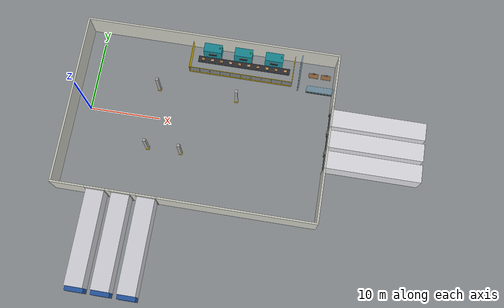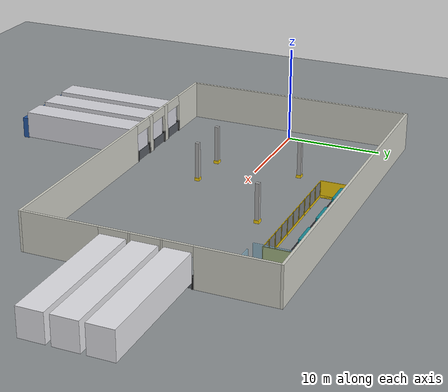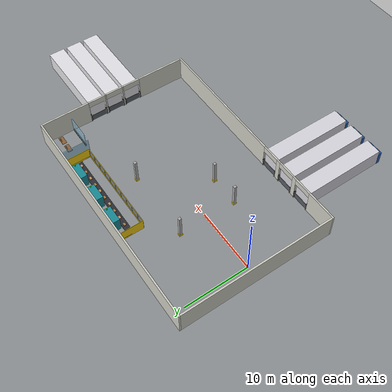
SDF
<sdf version="1.6">
 <world name="yektemak_factory">
  <model name="ground_plane">
   <static>true</static>
   <link name="link">
    <collision name="collision">
     <geometry><plane><normal>0 0 1</normal><size>120 120</size></plane></geometry>
     <surface><friction><ode><mu>1.0</mu><mu2>1.0</mu2></ode></friction></surface>
    </collision>
    <visual name="visual">
     <cast_shadows>false</cast_shadows>
     <geometry><plane><normal>0 0 1</normal><size>120 120</size></plane></geometry>
     <material>
      <ambient>0.44 0.46 0.46 1</ambient>
      <diffuse>0.55 0.57 0.58 1</diffuse>
      <specular>0.1 0.1 0.1 1</specular>
     </material>
    </visual>
   </link>
  </model>
  <model name="factory_building">
   <static>true</static>
   <link name="link">
    <collision name="b1_c">
     <pose>16 12.12 2 0 0 0</pose>
     <geometry><box><size>36.5 0.25 4</size></box></geometry>
    </collision>
    <visual name="b1_v">
     <pose>16 12.12 2 0 0 0</pose>
     <geometry><box><size>36.5 0.25 4</size></box></geometry>
     <material>
      <ambient>0.66 0.66 0.62 1</ambient>
      <diffuse>0.82 0.82 0.78 1</diffuse>
      <specular>0.1 0.1 0.1 1</specular>
     </material>
    </visual>
    <collision name="b2_c">
     <pose>-2.125 0 2 0 0 0</pose>
     <geometry><box><size>0.25 24 4</size></box></geometry>
    </collision>
    <visual name="b2_v">
     <pose>-2.125 0 2 0 0 0</pose>
     <geometry><box><size>0.25 24 4</size></box></geometry>
     <material>
      <ambient>0.66 0.66 0.62 1</ambient>
      <diffuse>0.82 0.82 0.78 1</diffuse>
      <specular>0.1 0.1 0.1 1</specular>
     </material>
    </visual>
    <collision name="b3_c">
     <pose>0.175 -12.12 2 0 0 0</pose>
     <geometry><box><size>4.85 0.25 4</size></box></geometry>
    </collision>
    <visual name="b3_v">
     <pose>0.175 -12.12 2 0 0 0</pose>
     <geometry><box><size>4.85 0.25 4</size></box></geometry>
     <material>
      <ambient>0.66 0.66 0.62 1</ambient>
      <diffuse>0.82 0.82 0.78 1</diffuse>
      <specular>0.1 0.1 0.1 1</specular>
     </material>
    </visual>
    <collision name="b4_c">
     <pose>5.75 -12.12 2 0 0 0</pose>
     <geometry><box><size>0.7 0.25 4</size></box></geometry>
    </collision>
    <visual name="b4_v">
     <pose>5.75 -12.12 2 0 0 0</pose>
     <geometry><box><size>0.7 0.25 4</size></box></geometry>
     <material>
      <ambient>0.66 0.66 0.62 1</ambient>
      <diffuse>0.82 0.82 0.78 1</diffuse>
      <specular>0.1 0.1 0.1 1</specular>
     </material>
    </visual>
    <collision name="b5_c">
     <pose>9.25 -12.12 2 0 0 0</pose>
     <geometry><box><size>0.7 0.25 4</size></box></geometry>
    </collision>
    <visual name="b5_v">
     <pose>9.25 -12.12 2 0 0 0</pose>
     <geometry><box><size>0.7 0.25 4</size></box></geometry>
     <material>
      <ambient>0.66 0.66 0.62 1</ambient>
      <diffuse>0.82 0.82 0.78 1</diffuse>
      <specular>0.1 0.1 0.1 1</specular>
     </material>
    </visual>
    <collision name="b6_c">
     <pose>23.32 -12.12 2 0 0 0</pose>
     <geometry><box><size>21.85 0.25 4</size></box></geometry>
    </collision>
    <visual name="b6_v">
     <pose>23.32 -12.12 2 0 0 0</pose>
     <geometry><box><size>21.85 0.25 4</size></box></geometry>
     <material>
      <ambient>0.66 0.66 0.62 1</ambient>
      <diffuse>0.82 0.82 0.78 1</diffuse>
      <specular>0.1 0.1 0.1 1</specular>
     </material>
    </visual>
    <collision name="b7_c">
     <pose>4 -12.12 3.5 0 0 0</pose>
     <geometry><box><size>2.8 0.25 1</size></box></geometry>
    </collision>
    <visual name="b7_v">
     <pose>4 -12.12 3.5 0 0 0</pose>
     <geometry><box><size>2.8 0.25 1</size></box></geometry>
     <material>
      <ambient>0.66 0.66 0.62 1</ambient>
      <diffuse>0.82 0.82 0.78 1</diffuse>
      <specular>0.1 0.1 0.1 1</specular>
     </material>
    </visual>
    <collision name="b8_c">
     <pose>4 -12.12 0.5 0 0 0</pose>
     <geometry><box><size>2.8 0.05 1</size></box></geometry>
    </collision>
    <visual name="b8_v">
     <pose>4 -12.12 0.5 0 0 0</pose>
     <geometry><box><size>2.8 0.05 1</size></box></geometry>
     <material>
      <ambient>0.28 0.30 0.32 1</ambient>
      <diffuse>0.35 0.37 0.4 1</diffuse>
      <specular>0.1 0.1 0.1 1</specular>
     </material>
    </visual>
    <collision name="b9_c">
     <pose>2.7 -12.12 0.6 0 0 0</pose>
     <geometry><box><size>0.18 0.35 1.2</size></box></geometry>
    </collision>
    <visual name="b9_v">
     <pose>2.7 -12.12 0.6 0 0 0</pose>
     <geometry><box><size>0.18 0.35 1.2</size></box></geometry>
     <material>
      <ambient>0.06 0.06 0.06 1</ambient>
      <diffuse>0.08 0.08 0.08 1</diffuse>
      <specular>0.1 0.1 0.1 1</specular>
     </material>
    </visual>
    <collision name="b10_c">
     <pose>5.3 -12.12 0.6 0 0 0</pose>
     <geometry><box><size>0.18 0.35 1.2</size></box></geometry>
    </collision>
    <visual name="b10_v">
     <pose>5.3 -12.12 0.6 0 0 0</pose>
     <geometry><box><size>0.18 0.35 1.2</size></box></geometry>
     <material>
      <ambient>0.06 0.06 0.06 1</ambient>
      <diffuse>0.08 0.08 0.08 1</diffuse>
      <specular>0.1 0.1 0.1 1</specular>
     </material>
    </visual>
    <collision name="b11_c">
     <pose>7.5 -12.12 3.5 0 0 0</pose>
     <geometry><box><size>2.8 0.25 1</size></box></geometry>
    </collision>
    <visual name="b11_v">
     <pose>7.5 -12.12 3.5 0 0 0</pose>
     <geometry><box><size>2.8 0.25 1</size></box></geometry>
     <material>
      <ambient>0.66 0.66 0.62 1</ambient>
      <diffuse>0.82 0.82 0.78 1</diffuse>
      <specular>0.1 0.1 0.1 1</specular>
     </material>
    </visual>
    <collision name="b12_c">
     <pose>7.5 -12.12 0.5 0 0 0</pose>
     <geometry><box><size>2.8 0.05 1</size></box></geometry>
    </collision>
    <visual name="b12_v">
     <pose>7.5 -12.12 0.5 0 0 0</pose>
     <geometry><box><size>2.8 0.05 1</size></box></geometry>
     <material>
      <ambient>0.28 0.30 0.32 1</ambient>
      <diffuse>0.35 0.37 0.4 1</diffuse>
      <specular>0.1 0.1 0.1 1</specular>
     </material>
    </visual>
    <collision name="b13_c">
     <pose>6.2 -12.12 0.6 0 0 0</pose>
     <geometry><box><size>0.18 0.35 1.2</size></box></geometry>
    </collision>
    <visual name="b13_v">
     <pose>6.2 -12.12 0.6 0 0 0</pose>
     <geometry><box><size>0.18 0.35 1.2</size></box></geometry>
     <material>
      <ambient>0.06 0.06 0.06 1</ambient>
      <diffuse>0.08 0.08 0.08 1</diffuse>
      <specular>0.1 0.1 0.1 1</specular>
     </material>
    </visual>
    <collision name="b14_c">
     <pose>8.8 -12.12 0.6 0 0 0</pose>
     <geometry><box><size>0.18 0.35 1.2</size></box></geometry>
    </collision>
    <visual name="b14_v">
     <pose>8.8 -12.12 0.6 0 0 0</pose>
     <geometry><box><size>0.18 0.35 1.2</size></box></geometry>
     <material>
      <ambient>0.06 0.06 0.06 1</ambient>
      <diffuse>0.08 0.08 0.08 1</diffuse>
      <specular>0.1 0.1 0.1 1</specular>
     </material>
    </visual>
    <collision name="b15_c">
     <pose>11 -12.12 3.5 0 0 0</pose>
     <geometry><box><size>2.8 0.25 1</size></box></geometry>
    </collision>
    <visual name="b15_v">
     <pose>11 -12.12 3.5 0 0 0</pose>
     <geometry><box><size>2.8 0.25 1</size></box></geometry>
     <material>
      <ambient>0.66 0.66 0.62 1</ambient>
      <diffuse>0.82 0.82 0.78 1</diffuse>
      <specular>0.1 0.1 0.1 1</specular>
     </material>
    </visual>
    <collision name="b16_c">
     <pose>11 -12.12 0.5 0 0 0</pose>
     <geometry><box><size>2.8 0.05 1</size></box></geometry>
    </collision>
    <visual name="b16_v">
     <pose>11 -12.12 0.5 0 0 0</pose>
     <geometry><box><size>2.8 0.05 1</size></box></geometry>
     <material>
      <ambient>0.28 0.30 0.32 1</ambient>
      <diffuse>0.35 0.37 0.4 1</diffuse>
      <specular>0.1 0.1 0.1 1</specular>
     </material>
    </visual>
    <collision name="b17_c">
     <pose>9.7 -12.12 0.6 0 0 0</pose>
     <geometry><box><size>0.18 0.35 1.2</size></box></geometry>
    </collision>
    <visual name="b17_v">
     <pose>9.7 -12.12 0.6 0 0 0</pose>
     <geometry><box><size>0.18 0.35 1.2</size></box></geometry>
     <material>
      <ambient>0.06 0.06 0.06 1</ambient>
      <diffuse>0.08 0.08 0.08 1</diffuse>
      <specular>0.1 0.1 0.1 1</specular>
     </material>
    </visual>
    <collision name="b18_c">
     <pose>12.3 -12.12 0.6 0 0 0</pose>
     <geometry><box><size>0.18 0.35 1.2</size></box></geometry>
    </collision>
    <visual name="b18_v">
     <pose>12.3 -12.12 0.6 0 0 0</pose>
     <geometry><box><size>0.18 0.35 1.2</size></box></geometry>
     <material>
      <ambient>0.06 0.06 0.06 1</ambient>
      <diffuse>0.08 0.08 0.08 1</diffuse>
      <specular>0.1 0.1 0.1 1</specular>
     </material>
    </visual>
    <collision name="b19_c">
     <pose>34.12 -8.2 2 0 0 0</pose>
     <geometry><box><size>0.25 7.6 4</size></box></geometry>
    </collision>
    <visual name="b19_v">
     <pose>34.12 -8.2 2 0 0 0</pose>
     <geometry><box><size>0.25 7.6 4</size></box></geometry>
     <material>
      <ambient>0.66 0.66 0.62 1</ambient>
      <diffuse>0.82 0.82 0.78 1</diffuse>
      <specular>0.1 0.1 0.1 1</specular>
     </material>
    </visual>
    <collision name="b20_c">
     <pose>34.12 -1.5 2 0 0 0</pose>
     <geometry><box><size>0.25 0.2 4</size></box></geometry>
    </collision>
    <visual name="b20_v">
     <pose>34.12 -1.5 2 0 0 0</pose>
     <geometry><box><size>0.25 0.2 4</size></box></geometry>
     <material>
      <ambient>0.66 0.66 0.62 1</ambient>
      <diffuse>0.82 0.82 0.78 1</diffuse>
      <specular>0.1 0.1 0.1 1</specular>
     </material>
    </visual>
    <collision name="b21_c">
     <pose>34.12 1.5 2 0 0 0</pose>
     <geometry><box><size>0.25 0.2 4</size></box></geometry>
    </collision>
    <visual name="b21_v">
     <pose>34.12 1.5 2 0 0 0</pose>
     <geometry><box><size>0.25 0.2 4</size></box></geometry>
     <material>
      <ambient>0.66 0.66 0.62 1</ambient>
      <diffuse>0.82 0.82 0.78 1</diffuse>
      <specular>0.1 0.1 0.1 1</specular>
     </material>
    </visual>
    <collision name="b22_c">
     <pose>34.12 8.2 2 0 0 0</pose>
     <geometry><box><size>0.25 7.6 4</size></box></geometry>
    </collision>
    <visual name="b22_v">
     <pose>34.12 8.2 2 0 0 0</pose>
     <geometry><box><size>0.25 7.6 4</size></box></geometry>
     <material>
      <ambient>0.66 0.66 0.62 1</ambient>
      <diffuse>0.82 0.82 0.78 1</diffuse>
      <specular>0.1 0.1 0.1 1</specular>
     </material>
    </visual>
    <collision name="b23_c">
     <pose>34.12 -3 3.5 0 0 0</pose>
     <geometry><box><size>0.25 2.8 1</size></box></geometry>
    </collision>
    <visual name="b23_v">
     <pose>34.12 -3 3.5 0 0 0</pose>
     <geometry><box><size>0.25 2.8 1</size></box></geometry>
     <material>
      <ambient>0.66 0.66 0.62 1</ambient>
      <diffuse>0.82 0.82 0.78 1</diffuse>
      <specular>0.1 0.1 0.1 1</specular>
     </material>
    </visual>
    <collision name="b24_c">
     <pose>34.12 -3 0.5 0 0 0</pose>
     <geometry><box><size>0.05 2.8 1</size></box></geometry>
    </collision>
    <visual name="b24_v">
     <pose>34.12 -3 0.5 0 0 0</pose>
     <geometry><box><size>0.05 2.8 1</size></box></geometry>
     <material>
      <ambient>0.28 0.30 0.32 1</ambient>
      <diffuse>0.35 0.37 0.4 1</diffuse>
      <specular>0.1 0.1 0.1 1</specular>
     </material>
    </visual>
    <collision name="b25_c">
     <pose>34.12 -4.3 0.6 0 0 0</pose>
     <geometry><box><size>0.35 0.18 1.2</size></box></geometry>
    </collision>
    <visual name="b25_v">
     <pose>34.12 -4.3 0.6 0 0 0</pose>
     <geometry><box><size>0.35 0.18 1.2</size></box></geometry>
     <material>
      <ambient>0.06 0.06 0.06 1</ambient>
      <diffuse>0.08 0.08 0.08 1</diffuse>
      <specular>0.1 0.1 0.1 1</specular>
     </material>
    </visual>
    <collision name="b26_c">
     <pose>34.12 -1.7 0.6 0 0 0</pose>
     <geometry><box><size>0.35 0.18 1.2</size></box></geometry>
    </collision>
    <visual name="b26_v">
     <pose>34.12 -1.7 0.6 0 0 0</pose>
     <geometry><box><size>0.35 0.18 1.2</size></box></geometry>
     <material>
      <ambient>0.06 0.06 0.06 1</ambient>
      <diffuse>0.08 0.08 0.08 1</diffuse>
      <specular>0.1 0.1 0.1 1</specular>
     </material>
    </visual>
    <collision name="b27_c">
     <pose>34.12 0 3.5 0 0 0</pose>
     <geometry><box><size>0.25 2.8 1</size></box></geometry>
    </collision>
    <visual name="b27_v">
     <pose>34.12 0 3.5 0 0 0</pose>
     <geometry><box><size>0.25 2.8 1</size></box></geometry>
     <material>
      <ambient>0.66 0.66 0.62 1</ambient>
      <diffuse>0.82 0.82 0.78 1</diffuse>
      <specular>0.1 0.1 0.1 1</specular>
     </material>
    </visual>
    <collision name="b28_c">
     <pose>34.12 0 0.5 0 0 0</pose>
     <geometry><box><size>0.05 2.8 1</size></box></geometry>
    </collision>
    <visual name="b28_v">
     <pose>34.12 0 0.5 0 0 0</pose>
     <geometry><box><size>0.05 2.8 1</size></box></geometry>
     <material>
      <ambient>0.28 0.30 0.32 1</ambient>
      <diffuse>0.35 0.37 0.4 1</diffuse>
      <specular>0.1 0.1 0.1 1</specular>
     </material>
    </visual>
    <collision name="b29_c">
     <pose>34.12 -1.3 0.6 0 0 0</pose>
     <geometry><box><size>0.35 0.18 1.2</size></box></geometry>
    </collision>
    <visual name="b29_v">
     <pose>34.12 -1.3 0.6 0 0 0</pose>
     <geometry><box><size>0.35 0.18 1.2</size></box></geometry>
     <material>
      <ambient>0.06 0.06 0.06 1</ambient>
      <diffuse>0.08 0.08 0.08 1</diffuse>
      <specular>0.1 0.1 0.1 1</specular>
     </material>
    </visual>
    <collision name="b30_c">
     <pose>34.12 1.3 0.6 0 0 0</pose>
     <geometry><box><size>0.35 0.18 1.2</size></box></geometry>
    </collision>
    <visual name="b30_v">
     <pose>34.12 1.3 0.6 0 0 0</pose>
     <geometry><box><size>0.35 0.18 1.2</size></box></geometry>
     <material>
      <ambient>0.06 0.06 0.06 1</ambient>
      <diffuse>0.08 0.08 0.08 1</diffuse>
      <specular>0.1 0.1 0.1 1</specular>
     </material>
    </visual>
    <collision name="b31_c">
     <pose>34.12 3 3.5 0 0 0</pose>
     <geometry><box><size>0.25 2.8 1</size></box></geometry>
    </collision>
    <visual name="b31_v">
     <pose>34.12 3 3.5 0 0 0</pose>
     <geometry><box><size>0.25 2.8 1</size></box></geometry>
     <material>
      <ambient>0.66 0.66 0.62 1</ambient>
      <diffuse>0.82 0.82 0.78 1</diffuse>
      <specular>0.1 0.1 0.1 1</specular>
     </material>
    </visual>
    <collision name="b32_c">
     <pose>34.12 3 0.5 0 0 0</pose>
     <geometry><box><size>0.05 2.8 1</size></box></geometry>
    </collision>
    <visual name="b32_v">
     <pose>34.12 3 0.5 0 0 0</pose>
     <geometry><box><size>0.05 2.8 1</size></box></geometry>
     <material>
      <ambient>0.28 0.30 0.32 1</ambient>
      <diffuse>0.35 0.37 0.4 1</diffuse>
      <specular>0.1 0.1 0.1 1</specular>
     </material>
    </visual>
    <collision name="b33_c">
     <pose>34.12 1.7 0.6 0 0 0</pose>
     <geometry><box><size>0.35 0.18 1.2</size></box></geometry>
    </collision>
    <visual name="b33_v">
     <pose>34.12 1.7 0.6 0 0 0</pose>
     <geometry><box><size>0.35 0.18 1.2</size></box></geometry>
     <material>
      <ambient>0.06 0.06 0.06 1</ambient>
      <diffuse>0.08 0.08 0.08 1</diffuse>
      <specular>0.1 0.1 0.1 1</specular>
     </material>
    </visual>
    <collision name="b34_c">
     <pose>34.12 4.3 0.6 0 0 0</pose>
     <geometry><box><size>0.35 0.18 1.2</size></box></geometry>
    </collision>
    <visual name="b34_v">
     <pose>34.12 4.3 0.6 0 0 0</pose>
     <geometry><box><size>0.35 0.18 1.2</size></box></geometry>
     <material>
      <ambient>0.06 0.06 0.06 1</ambient>
      <diffuse>0.08 0.08 0.08 1</diffuse>
      <specular>0.1 0.1 0.1 1</specular>
     </material>
    </visual>
    <collision name="b35_c">
     <pose>9.25 4.5 2 0 0 0</pose>
     <geometry><box><size>0.4 0.4 4</size></box></geometry>
    </collision>
    <visual name="b35_v">
     <pose>9.25 4.5 2 0 0 0</pose>
     <geometry><box><size>0.4 0.4 4</size></box></geometry>
     <material>
      <ambient>0.54 0.54 0.54 1</ambient>
      <diffuse>0.68 0.68 0.68 1</diffuse>
      <specular>0.1 0.1 0.1 1</specular>
     </material>
    </visual>
    <collision name="b36_c">
     <pose>9.25 4.5 0.15 0 0 0</pose>
     <geometry><box><size>0.52 0.52 0.3</size></box></geometry>
    </collision>
    <visual name="b36_v">
     <pose>9.25 4.5 0.15 0 0 0</pose>
     <geometry><box><size>0.52 0.52 0.3</size></box></geometry>
     <material>
      <ambient>0.78 0.66 0.04 1</ambient>
      <diffuse>0.98 0.82 0.05 1</diffuse>
      <specular>0.1 0.1 0.1 1</specular>
     </material>
    </visual>
    <collision name="b37_c">
     <pose>9.25 -4.5 2 0 0 0</pose>
     <geometry><box><size>0.4 0.4 4</size></box></geometry>
    </collision>
    <visual name="b37_v">
     <pose>9.25 -4.5 2 0 0 0</pose>
     <geometry><box><size>0.4 0.4 4</size></box></geometry>
     <material>
      <ambient>0.54 0.54 0.54 1</ambient>
      <diffuse>0.68 0.68 0.68 1</diffuse>
      <specular>0.1 0.1 0.1 1</specular>
     </material>
    </visual>
    <collision name="b38_c">
     <pose>9.25 -4.5 0.15 0 0 0</pose>
     <geometry><box><size>0.52 0.52 0.3</size></box></geometry>
    </collision>
    <visual name="b38_v">
     <pose>9.25 -4.5 0.15 0 0 0</pose>
     <geometry><box><size>0.52 0.52 0.3</size></box></geometry>
     <material>
      <ambient>0.78 0.66 0.04 1</ambient>
      <diffuse>0.98 0.82 0.05 1</diffuse>
      <specular>0.1 0.1 0.1 1</specular>
     </material>
    </visual>
    <collision name="b39_c">
     <pose>20.5 4.5 2 0 0 0</pose>
     <geometry><box><size>0.4 0.4 4</size></box></geometry>
    </collision>
    <visual name="b39_v">
     <pose>20.5 4.5 2 0 0 0</pose>
     <geometry><box><size>0.4 0.4 4</size></box></geometry>
     <material>
      <ambient>0.54 0.54 0.54 1</ambient>
      <diffuse>0.68 0.68 0.68 1</diffuse>
      <specular>0.1 0.1 0.1 1</specular>
     </material>
    </visual>
    <collision name="b40_c">
     <pose>20.5 4.5 0.15 0 0 0</pose>
     <geometry><box><size>0.52 0.52 0.3</size></box></geometry>
    </collision>
    <visual name="b40_v">
     <pose>20.5 4.5 0.15 0 0 0</pose>
     <geometry><box><size>0.52 0.52 0.3</size></box></geometry>
     <material>
      <ambient>0.78 0.66 0.04 1</ambient>
      <diffuse>0.98 0.82 0.05 1</diffuse>
      <specular>0.1 0.1 0.1 1</specular>
     </material>
    </visual>
    <collision name="b41_c">
     <pose>14 -4.5 2 0 0 0</pose>
     <geometry><box><size>0.4 0.4 4</size></box></geometry>
    </collision>
    <visual name="b41_v">
     <pose>14 -4.5 2 0 0 0</pose>
     <geometry><box><size>0.4 0.4 4</size></box></geometry>
     <material>
      <ambient>0.54 0.54 0.54 1</ambient>
      <diffuse>0.68 0.68 0.68 1</diffuse>
      <specular>0.1 0.1 0.1 1</specular>
     </material>
    </visual>
    <collision name="b42_c">
     <pose>14 -4.5 0.15 0 0 0</pose>
     <geometry><box><size>0.52 0.52 0.3</size></box></geometry>
    </collision>
    <visual name="b42_v">
     <pose>14 -4.5 0.15 0 0 0</pose>
     <geometry><box><size>0.52 0.52 0.3</size></box></geometry>
     <material>
      <ambient>0.78 0.66 0.04 1</ambient>
      <diffuse>0.98 0.82 0.05 1</diffuse>
      <specular>0.1 0.1 0.1 1</specular>
     </material>
    </visual>
    <collision name="b43_c">
     <pose>32.1 7.5 1.25 0 0 0</pose>
     <geometry><box><size>3.8 0.12 2.5</size></box></geometry>
    </collision>
    <visual name="b43_v">
     <pose>32.1 7.5 1.25 0 0 0</pose>
     <geometry><box><size>3.8 0.12 2.5</size></box></geometry>
     <material>
      <ambient>0.44 0.60 0.68 1</ambient>
      <diffuse>0.55 0.75 0.85 1</diffuse>
      <specular>0.1 0.1 0.1 1</specular>
     </material>
     <transparency>0.35</transparency>
    </visual>
    <collision name="b44_c">
     <pose>29 9.75 1.25 0 0 0</pose>
     <geometry><box><size>0.12 4.5 2.5</size></box></geometry>
    </collision>
    <visual name="b44_v">
     <pose>29 9.75 1.25 0 0 0</pose>
     <geometry><box><size>0.12 4.5 2.5</size></box></geometry>
     <material>
      <ambient>0.44 0.60 0.68 1</ambient>
      <diffuse>0.55 0.75 0.85 1</diffuse>
      <specular>0.1 0.1 0.1 1</specular>
     </material>
     <transparency>0.35</transparency>
    </visual>
    <collision name="b45_c">
     <pose>32.1 7.5 0.12 0 0 0</pose>
     <geometry><box><size>3.8 0.14 0.24</size></box></geometry>
    </collision>
    <visual name="b45_v">
     <pose>32.1 7.5 0.12 0 0 0</pose>
     <geometry><box><size>3.8 0.14 0.24</size></box></geometry>
     <material>
      <ambient>0.24 0.24 0.24 1</ambient>
      <diffuse>0.3 0.3 0.3 1</diffuse>
      <specular>0.1 0.1 0.1 1</specular>
     </material>
    </visual>
    <collision name="b46_c">
     <pose>29 9.75 0.12 0 0 0</pose>
     <geometry><box><size>0.14 4.5 0.24</size></box></geometry>
    </collision>
    <visual name="b46_v">
     <pose>29 9.75 0.12 0 0 0</pose>
     <geometry><box><size>0.14 4.5 0.24</size></box></geometry>
     <material>
      <ambient>0.24 0.24 0.24 1</ambient>
      <diffuse>0.3 0.3 0.3 1</diffuse>
      <specular>0.1 0.1 0.1 1</specular>
     </material>
    </visual>
    <collision name="b47_c">
     <pose>31 10 0.38 0 0 0</pose>
     <geometry><box><size>1.4 0.7 0.04</size></box></geometry>
    </collision>
    <visual name="b47_v">
     <pose>31 10 0.38 0 0 0</pose>
     <geometry><box><size>1.4 0.7 0.04</size></box></geometry>
     <material>
      <ambient>0.44 0.30 0.18 1</ambient>
      <diffuse>0.55 0.38 0.22 1</diffuse>
      <specular>0.1 0.1 0.1 1</specular>
     </material>
    </visual>
    <visual name="b48_v">
     <pose>31 10.25 0.62 0 0 0</pose>
     <cast_shadows>false</cast_shadows>
     <geometry><box><size>0.5 0.04 0.32</size></box></geometry>
     <material>
      <ambient>0.06 0.06 0.06 1</ambient>
      <diffuse>0.08 0.08 0.08 1</diffuse>
      <specular>0.1 0.1 0.1 1</specular>
     </material>
    </visual>
    <collision name="b49_c">
     <pose>32.8 10 0.38 0 0 0</pose>
     <geometry><box><size>1.4 0.7 0.04</size></box></geometry>
    </collision>
    <visual name="b49_v">
     <pose>32.8 10 0.38 0 0 0</pose>
     <geometry><box><size>1.4 0.7 0.04</size></box></geometry>
     <material>
      <ambient>0.44 0.30 0.18 1</ambient>
      <diffuse>0.55 0.38 0.22 1</diffuse>
      <specular>0.1 0.1 0.1 1</specular>
     </material>
    </visual>
    <visual name="b50_v">
     <pose>32.8 10.25 0.62 0 0 0</pose>
     <cast_shadows>false</cast_shadows>
     <geometry><box><size>0.5 0.04 0.32</size></box></geometry>
     <material>
      <ambient>0.06 0.06 0.06 1</ambient>
      <diffuse>0.08 0.08 0.08 1</diffuse>
      <specular>0.1 0.1 0.1 1</specular>
     </material>
    </visual>
   </link>
  </model>
  <model name="trucks">
   <static>true</static>
   <link name="link">
    <visual name="b51_v">
     <pose>4 -18.75 2 0 0 0</pose>
     <cast_shadows>false</cast_shadows>
     <geometry><box><size>2.5 13 2.8</size></box></geometry>
     <material>
      <ambient>0.68 0.68 0.70 1</ambient>
      <diffuse>0.85 0.85 0.88 1</diffuse>
      <specular>0.1 0.1 0.1 1</specular>
     </material>
    </visual>
    <visual name="b52_v">
     <pose>4 -25.55 1.6 0 0 0</pose>
     <cast_shadows>false</cast_shadows>
     <geometry><box><size>2.5 0.6 2.2</size></box></geometry>
     <material>
      <ambient>0.12 0.28 0.52 1</ambient>
      <diffuse>0.15 0.35 0.65 1</diffuse>
      <specular>0.1 0.1 0.1 1</specular>
     </material>
    </visual>
    <visual name="b53_v">
     <pose>7.5 -18.75 2 0 0 0</pose>
     <cast_shadows>false</cast_shadows>
     <geometry><box><size>2.5 13 2.8</size></box></geometry>
     <material>
      <ambient>0.68 0.68 0.70 1</ambient>
      <diffuse>0.85 0.85 0.88 1</diffuse>
      <specular>0.1 0.1 0.1 1</specular>
     </material>
    </visual>
    <visual name="b54_v">
     <pose>7.5 -25.55 1.6 0 0 0</pose>
     <cast_shadows>false</cast_shadows>
     <geometry><box><size>2.5 0.6 2.2</size></box></geometry>
     <material>
      <ambient>0.12 0.28 0.52 1</ambient>
      <diffuse>0.15 0.35 0.65 1</diffuse>
      <specular>0.1 0.1 0.1 1</specular>
     </material>
    </visual>
    <visual name="b55_v">
     <pose>11 -18.75 2 0 0 0</pose>
     <cast_shadows>false</cast_shadows>
     <geometry><box><size>2.5 13 2.8</size></box></geometry>
     <material>
      <ambient>0.68 0.68 0.70 1</ambient>
      <diffuse>0.85 0.85 0.88 1</diffuse>
      <specular>0.1 0.1 0.1 1</specular>
     </material>
    </visual>
    <visual name="b56_v">
     <pose>11 -25.55 1.6 0 0 0</pose>
     <cast_shadows>false</cast_shadows>
     <geometry><box><size>2.5 0.6 2.2</size></box></geometry>
     <material>
      <ambient>0.12 0.28 0.52 1</ambient>
      <diffuse>0.15 0.35 0.65 1</diffuse>
      <specular>0.1 0.1 0.1 1</specular>
     </material>
    </visual>
    <visual name="b57_v">
     <pose>40.75 -3 2 0 0 0</pose>
     <cast_shadows>false</cast_shadows>
     <geometry><box><size>13 2.5 2.8</size></box></geometry>
     <material>
      <ambient>0.72 0.72 0.74 1</ambient>
      <diffuse>0.9 0.9 0.92 1</diffuse>
      <specular>0.1 0.1 0.1 1</specular>
     </material>
    </visual>
    <visual name="b58_v">
     <pose>40.75 0 2 0 0 0</pose>
     <cast_shadows>false</cast_shadows>
     <geometry><box><size>13 2.5 2.8</size></box></geometry>
     <material>
      <ambient>0.72 0.72 0.74 1</ambient>
      <diffuse>0.9 0.9 0.92 1</diffuse>
      <specular>0.1 0.1 0.1 1</specular>
     </material>
    </visual>
    <visual name="b59_v">
     <pose>40.75 3 2 0 0 0</pose>
     <cast_shadows>false</cast_shadows>
     <geometry><box><size>13 2.5 2.8</size></box></geometry>
     <material>
      <ambient>0.72 0.72 0.74 1</ambient>
      <diffuse>0.9 0.9 0.92 1</diffuse>
      <specular>0.1 0.1 0.1 1</specular>
     </material>
    </visual>
   </link>
  </model>
  <model name="production_line">
   <static>true</static>
   <link name="link">
    <collision name="b60_c">
     <pose>20.75 10 0.42 0 0 0</pose>
     <geometry><box><size>13.5 0.9 0.08</size></box></geometry>
    </collision>
    <visual name="b60_v">
     <pose>20.75 10 0.42 0 0 0</pose>
     <geometry><box><size>13.5 0.9 0.08</size></box></geometry>
     <material>
      <ambient>0.14 0.14 0.16 1</ambient>
      <diffuse>0.18 0.18 0.2 1</diffuse>
      <specular>0.1 0.1 0.1 1</specular>
     </material>
    </visual>
    <collision name="b61_c">
     <pose>20.75 10 0.2 0 0 0</pose>
     <geometry><box><size>13.5 0.7 0.36</size></box></geometry>
    </collision>
    <visual name="b61_v">
     <pose>20.75 10 0.2 0 0 0</pose>
     <geometry><box><size>13.5 0.7 0.36</size></box></geometry>
     <material>
      <ambient>0.36 0.38 0.40 1</ambient>
      <diffuse>0.45 0.47 0.5 1</diffuse>
      <specular>0.1 0.1 0.1 1</specular>
     </material>
    </visual>
    <visual name="b62_v">
     <pose>14.7 10 0.52 0 0 0</pose>
     <cast_shadows>false</cast_shadows>
     <geometry><box><size>0.45 0.35 0.12</size></box></geometry>
     <material>
      <ambient>0.53 0.39 0.23 1</ambient>
      <diffuse>0.66 0.49 0.29 1</diffuse>
      <specular>0.1 0.1 0.1 1</specular>
     </material>
    </visual>
    <visual name="b63_v">
     <pose>16.05 10 0.52 0 0 0</pose>
     <cast_shadows>false</cast_shadows>
     <geometry><box><size>0.45 0.35 0.12</size></box></geometry>
     <material>
      <ambient>0.62 0.48 0.30 1</ambient>
      <diffuse>0.78 0.6 0.38 1</diffuse>
      <specular>0.1 0.1 0.1 1</specular>
     </material>
    </visual>
    <visual name="b64_v">
     <pose>17.4 10 0.52 0 0 0</pose>
     <cast_shadows>false</cast_shadows>
     <geometry><box><size>0.45 0.35 0.12</size></box></geometry>
     <material>
      <ambient>0.53 0.39 0.23 1</ambient>
      <diffuse>0.66 0.49 0.29 1</diffuse>
      <specular>0.1 0.1 0.1 1</specular>
     </material>
    </visual>
    <visual name="b65_v">
     <pose>18.75 10 0.52 0 0 0</pose>
     <cast_shadows>false</cast_shadows>
     <geometry><box><size>0.45 0.35 0.12</size></box></geometry>
     <material>
      <ambient>0.62 0.48 0.30 1</ambient>
      <diffuse>0.78 0.6 0.38 1</diffuse>
      <specular>0.1 0.1 0.1 1</specular>
     </material>
    </visual>
    <visual name="b66_v">
     <pose>20.1 10 0.52 0 0 0</pose>
     <cast_shadows>false</cast_shadows>
     <geometry><box><size>0.45 0.35 0.12</size></box></geometry>
     <material>
      <ambient>0.53 0.39 0.23 1</ambient>
      <diffuse>0.66 0.49 0.29 1</diffuse>
      <specular>0.1 0.1 0.1 1</specular>
     </material>
    </visual>
    <visual name="b67_v">
     <pose>21.45 10 0.52 0 0 0</pose>
     <cast_shadows>false</cast_shadows>
     <geometry><box><size>0.45 0.35 0.12</size></box></geometry>
     <material>
      <ambient>0.62 0.48 0.30 1</ambient>
      <diffuse>0.78 0.6 0.38 1</diffuse>
      <specular>0.1 0.1 0.1 1</specular>
     </material>
    </visual>
    <visual name="b68_v">
     <pose>22.8 10 0.52 0 0 0</pose>
     <cast_shadows>false</cast_shadows>
     <geometry><box><size>0.45 0.35 0.12</size></box></geometry>
     <material>
      <ambient>0.53 0.39 0.23 1</ambient>
      <diffuse>0.66 0.49 0.29 1</diffuse>
      <specular>0.1 0.1 0.1 1</specular>
     </material>
    </visual>
    <visual name="b69_v">
     <pose>24.15 10 0.52 0 0 0</pose>
     <cast_shadows>false</cast_shadows>
     <geometry><box><size>0.45 0.35 0.12</size></box></geometry>
     <material>
      <ambient>0.62 0.48 0.30 1</ambient>
      <diffuse>0.78 0.6 0.38 1</diffuse>
      <specular>0.1 0.1 0.1 1</specular>
     </material>
    </visual>
    <visual name="b70_v">
     <pose>25.5 10 0.52 0 0 0</pose>
     <cast_shadows>false</cast_shadows>
     <geometry><box><size>0.45 0.35 0.12</size></box></geometry>
     <material>
      <ambient>0.53 0.39 0.23 1</ambient>
      <diffuse>0.66 0.49 0.29 1</diffuse>
      <specular>0.1 0.1 0.1 1</specular>
     </material>
    </visual>
    <visual name="b71_v">
     <pose>26.85 10 0.52 0 0 0</pose>
     <cast_shadows>false</cast_shadows>
     <geometry><box><size>0.45 0.35 0.12</size></box></geometry>
     <material>
      <ambient>0.62 0.48 0.30 1</ambient>
      <diffuse>0.78 0.6 0.38 1</diffuse>
      <specular>0.1 0.1 0.1 1</specular>
     </material>
    </visual>
    <collision name="b72_c">
     <pose>16 11.2 1.1 0 0 0</pose>
     <geometry><box><size>2.6 1.3 2.2</size></box></geometry>
    </collision>
    <visual name="b72_v">
     <pose>16 11.2 1.1 0 0 0</pose>
     <geometry><box><size>2.6 1.3 2.2</size></box></geometry>
     <material>
      <ambient>0.08 0.44 0.48 1</ambient>
      <diffuse>0.1 0.55 0.6 1</diffuse>
      <specular>0.1 0.1 0.1 1</specular>
     </material>
    </visual>
    <visual name="b73_v">
     <pose>16 10.52 1.3 0 0 0</pose>
     <cast_shadows>false</cast_shadows>
     <geometry><box><size>1.2 0.06 0.6</size></box></geometry>
     <material>
      <ambient>0.04 0.06 0.08 1</ambient>
      <diffuse>0.05 0.08 0.1 1</diffuse>
      <specular>0.1 0.1 0.1 1</specular>
     </material>
    </visual>
    <visual name="c74_v">
     <pose>17 11.2 2.45 0 0 0</pose>
     <geometry><cylinder><radius>0.08</radius><length>0.3</length></cylinder></geometry>
     <material>
      <ambient>0.08 0.72 0.16 1</ambient>
      <diffuse>0.1 0.9 0.2 1</diffuse>
      <specular>0.1 0.1 0.1 1</specular>
      <emissive>0.1 0.9 0.2 1</emissive>
     </material>
    </visual>
    <collision name="b75_c">
     <pose>20.5 11.2 1.1 0 0 0</pose>
     <geometry><box><size>2.6 1.3 2.2</size></box></geometry>
    </collision>
    <visual name="b75_v">
     <pose>20.5 11.2 1.1 0 0 0</pose>
     <geometry><box><size>2.6 1.3 2.2</size></box></geometry>
     <material>
      <ambient>0.08 0.44 0.48 1</ambient>
      <diffuse>0.1 0.55 0.6 1</diffuse>
      <specular>0.1 0.1 0.1 1</specular>
     </material>
    </visual>
    <visual name="b76_v">
     <pose>20.5 10.52 1.3 0 0 0</pose>
     <cast_shadows>false</cast_shadows>
     <geometry><box><size>1.2 0.06 0.6</size></box></geometry>
     <material>
      <ambient>0.04 0.06 0.08 1</ambient>
      <diffuse>0.05 0.08 0.1 1</diffuse>
      <specular>0.1 0.1 0.1 1</specular>
     </material>
    </visual>
    <visual name="c77_v">
     <pose>21.5 11.2 2.45 0 0 0</pose>
     <geometry><cylinder><radius>0.08</radius><length>0.3</length></cylinder></geometry>
     <material>
      <ambient>0.08 0.72 0.16 1</ambient>
      <diffuse>0.1 0.9 0.2 1</diffuse>
      <specular>0.1 0.1 0.1 1</specular>
      <emissive>0.1 0.9 0.2 1</emissive>
     </material>
    </visual>
    <collision name="b78_c">
     <pose>25 11.2 1.1 0 0 0</pose>
     <geometry><box><size>2.6 1.3 2.2</size></box></geometry>
    </collision>
    <visual name="b78_v">
     <pose>25 11.2 1.1 0 0 0</pose>
     <geometry><box><size>2.6 1.3 2.2</size></box></geometry>
     <material>
      <ambient>0.08 0.44 0.48 1</ambient>
      <diffuse>0.1 0.55 0.6 1</diffuse>
      <specular>0.1 0.1 0.1 1</specular>
     </material>
    </visual>
    <visual name="b79_v">
     <pose>25 10.52 1.3 0 0 0</pose>
     <cast_shadows>false</cast_shadows>
     <geometry><box><size>1.2 0.06 0.6</size></box></geometry>
     <material>
      <ambient>0.04 0.06 0.08 1</ambient>
      <diffuse>0.05 0.08 0.1 1</diffuse>
      <specular>0.1 0.1 0.1 1</specular>
     </material>
    </visual>
    <visual name="c80_v">
     <pose>26 11.2 2.45 0 0 0</pose>
     <geometry><cylinder><radius>0.08</radius><length>0.3</length></cylinder></geometry>
     <material>
      <ambient>0.08 0.72 0.16 1</ambient>
      <diffuse>0.1 0.9 0.2 1</diffuse>
      <specular>0.1 0.1 0.1 1</specular>
      <emissive>0.1 0.9 0.2 1</emissive>
     </material>
    </visual>
    <collision name="b81_c">
     <pose>20.5 8 0.15 0 0 0</pose>
     <geometry><box><size>15 0.06 0.24</size></box></geometry>
    </collision>
    <visual name="b81_v">
     <pose>20.5 8 0.15 0 0 0</pose>
     <geometry><box><size>15 0.06 0.24</size></box></geometry>
     <material>
      <ambient>0.78 0.66 0.04 1</ambient>
      <diffuse>0.98 0.82 0.05 1</diffuse>
      <specular>0.1 0.1 0.1 1</specular>
     </material>
    </visual>
    <collision name="b82_c">
     <pose>20.5 8 1 0 0 0</pose>
     <geometry><box><size>15 0.02 1.5</size></box></geometry>
    </collision>
    <visual name="b82_v">
     <pose>20.5 8 1 0 0 0</pose>
     <geometry><box><size>15 0.02 1.5</size></box></geometry>
     <material>
      <ambient>0.24 0.24 0.24 1</ambient>
      <diffuse>0.3 0.3 0.3 1</diffuse>
      <specular>0.1 0.1 0.1 1</specular>
     </material>
     <transparency>0.6</transparency>
    </visual>
    <collision name="b83_c">
     <pose>20.5 8 1.75 0 0 0</pose>
     <geometry><box><size>15 0.06 0.06</size></box></geometry>
    </collision>
    <visual name="b83_v">
     <pose>20.5 8 1.75 0 0 0</pose>
     <geometry><box><size>15 0.06 0.06</size></box></geometry>
     <material>
      <ambient>0.78 0.66 0.04 1</ambient>
      <diffuse>0.98 0.82 0.05 1</diffuse>
      <specular>0.1 0.1 0.1 1</specular>
     </material>
    </visual>
    <collision name="b84_c">
     <pose>13 8 0.9 0 0 0</pose>
     <geometry><box><size>0.06 0.06 1.8</size></box></geometry>
    </collision>
    <visual name="b84_v">
     <pose>13 8 0.9 0 0 0</pose>
     <geometry><box><size>0.06 0.06 1.8</size></box></geometry>
     <material>
      <ambient>0.78 0.66 0.04 1</ambient>
      <diffuse>0.98 0.82 0.05 1</diffuse>
      <specular>0.1 0.1 0.1 1</specular>
     </material>
    </visual>
    <collision name="b85_c">
     <pose>14.5 8 0.9 0 0 0</pose>
     <geometry><box><size>0.06 0.06 1.8</size></box></geometry>
    </collision>
    <visual name="b85_v">
     <pose>14.5 8 0.9 0 0 0</pose>
     <geometry><box><size>0.06 0.06 1.8</size></box></geometry>
     <material>
      <ambient>0.78 0.66 0.04 1</ambient>
      <diffuse>0.98 0.82 0.05 1</diffuse>
      <specular>0.1 0.1 0.1 1</specular>
     </material>
    </visual>
    <collision name="b86_c">
     <pose>16 8 0.9 0 0 0</pose>
     <geometry><box><size>0.06 0.06 1.8</size></box></geometry>
    </collision>
    <visual name="b86_v">
     <pose>16 8 0.9 0 0 0</pose>
     <geometry><box><size>0.06 0.06 1.8</size></box></geometry>
     <material>
      <ambient>0.78 0.66 0.04 1</ambient>
      <diffuse>0.98 0.82 0.05 1</diffuse>
      <specular>0.1 0.1 0.1 1</specular>
     </material>
    </visual>
    <collision name="b87_c">
     <pose>17.5 8 0.9 0 0 0</pose>
     <geometry><box><size>0.06 0.06 1.8</size></box></geometry>
    </collision>
    <visual name="b87_v">
     <pose>17.5 8 0.9 0 0 0</pose>
     <geometry><box><size>0.06 0.06 1.8</size></box></geometry>
     <material>
      <ambient>0.78 0.66 0.04 1</ambient>
      <diffuse>0.98 0.82 0.05 1</diffuse>
      <specular>0.1 0.1 0.1 1</specular>
     </material>
    </visual>
    <collision name="b88_c">
     <pose>19 8 0.9 0 0 0</pose>
     <geometry><box><size>0.06 0.06 1.8</size></box></geometry>
    </collision>
    <visual name="b88_v">
     <pose>19 8 0.9 0 0 0</pose>
     <geometry><box><size>0.06 0.06 1.8</size></box></geometry>
     <material>
      <ambient>0.78 0.66 0.04 1</ambient>
      <diffuse>0.98 0.82 0.05 1</diffuse>
      <specular>0.1 0.1 0.1 1</specular>
     </material>
    </visual>
    <collision name="b89_c">
     <pose>20.5 8 0.9 0 0 0</pose>
     <geometry><box><size>0.06 0.06 1.8</size></box></geometry>
    </collision>
    <visual name="b89_v">
     <pose>20.5 8 0.9 0 0 0</pose>
     <geometry><box><size>0.06 0.06 1.8</size></box></geometry>
     <material>
      <ambient>0.78 0.66 0.04 1</ambient>
      <diffuse>0.98 0.82 0.05 1</diffuse>
      <specular>0.1 0.1 0.1 1</specular>
     </material>
    </visual>
    <collision name="b90_c">
     <pose>22 8 0.9 0 0 0</pose>
     <geometry><box><size>0.06 0.06 1.8</size></box></geometry>
    </collision>
    <visual name="b90_v">
     <pose>22 8 0.9 0 0 0</pose>
     <geometry><box><size>0.06 0.06 1.8</size></box></geometry>
     <material>
      <ambient>0.78 0.66 0.04 1</ambient>
      <diffuse>0.98 0.82 0.05 1</diffuse>
      <specular>0.1 0.1 0.1 1</specular>
     </material>
    </visual>
    <collision name="b91_c">
     <pose>23.5 8 0.9 0 0 0</pose>
     <geometry><box><size>0.06 0.06 1.8</size></box></geometry>
    </collision>
    <visual name="b91_v">
     <pose>23.5 8 0.9 0 0 0</pose>
     <geometry><box><size>0.06 0.06 1.8</size></box></geometry>
     <material>
      <ambient>0.78 0.66 0.04 1</ambient>
      <diffuse>0.98 0.82 0.05 1</diffuse>
      <specular>0.1 0.1 0.1 1</specular>
     </material>
    </visual>
    <collision name="b92_c">
     <pose>25 8 0.9 0 0 0</pose>
     <geometry><box><size>0.06 0.06 1.8</size></box></geometry>
    </collision>
    <visual name="b92_v">
     <pose>25 8 0.9 0 0 0</pose>
     <geometry><box><size>0.06 0.06 1.8</size></box></geometry>
     <material>
      <ambient>0.78 0.66 0.04 1</ambient>
      <diffuse>0.98 0.82 0.05 1</diffuse>
      <specular>0.1 0.1 0.1 1</specular>
     </material>
    </visual>
    <collision name="b93_c">
     <pose>26.5 8 0.9 0 0 0</pose>
     <geometry><box><size>0.06 0.06 1.8</size></box></geometry>
    </collision>
    <visual name="b93_v">
     <pose>26.5 8 0.9 0 0 0</pose>
     <geometry><box><size>0.06 0.06 1.8</size></box></geometry>
     <material>
      <ambient>0.78 0.66 0.04 1</ambient>
      <diffuse>0.98 0.82 0.05 1</diffuse>
      <specular>0.1 0.1 0.1 1</specular>
     </material>
    </visual>
    <collision name="b94_c">
     <pose>28 8 0.9 0 0 0</pose>
     <geometry><box><size>0.06 0.06 1.8</size></box></geometry>
    </collision>
    <visual name="b94_v">
     <pose>28 8 0.9 0 0 0</pose>
     <geometry><box><size>0.06 0.06 1.8</size></box></geometry>
     <material>
      <ambient>0.78 0.66 0.04 1</ambient>
      <diffuse>0.98 0.82 0.05 1</diffuse>
      <specular>0.1 0.1 0.1 1</specular>
     </material>
    </visual>
    <collision name="b95_c">
     <pose>13 10 0.9 0 0 0</pose>
     <geometry><box><size>0.06 4 1.8</size></box></geometry>
    </collision>
    <visual name="b95_v">
     <pose>13 10 0.9 0 0 0</pose>
     <geometry><box><size>0.06 4 1.8</size></box></geometry>
     <material>
      <ambient>0.78 0.66 0.04 1</ambient>
      <diffuse>0.98 0.82 0.05 1</diffuse>
      <specular>0.1 0.1 0.1 1</specular>
     </material>
    </visual>
    <collision name="b96_c">
     <pose>13 10 0.15 0 0 0</pose>
     <geometry><box><size>0.06 4 0.24</size></box></geometry>
    </collision>
    <visual name="b96_v">
     <pose>13 10 0.15 0 0 0</pose>
     <geometry><box><size>0.06 4 0.24</size></box></geometry>
     <material>
      <ambient>0.78 0.66 0.04 1</ambient>
      <diffuse>0.98 0.82 0.05 1</diffuse>
      <specular>0.1 0.1 0.1 1</specular>
     </material>
    </visual>
    <collision name="b97_c">
     <pose>28 10 0.9 0 0 0</pose>
     <geometry><box><size>0.06 4 1.8</size></box></geometry>
    </collision>
    <visual name="b97_v">
     <pose>28 10 0.9 0 0 0</pose>
     <geometry><box><size>0.06 4 1.8</size></box></geometry>
     <material>
      <ambient>0.78 0.66 0.04 1</ambient>
      <diffuse>0.98 0.82 0.05 1</diffuse>
      <specular>0.1 0.1 0.1 1</specular>
     </material>
    </visual>
    <collision name="b98_c">
     <pose>28 10 0.15 0 0 0</pose>
     <geometry><box><size>0.06 4 0.24</size></box></geometry>
    </collision>
    <visual name="b98_v">
     <pose>28 10 0.15 0 0 0</pose>
     <geometry><box><size>0.06 4 0.24</size></box></geometry>
     <material>
      <ambient>0.78 0.66 0.04 1</ambient>
      <diffuse>0.98 0.82 0.05 1</diffuse>
      <specular>0.1 0.1 0.1 1</specular>
     </material>
    </visual>
   </link>
  </model>
 </world>
</sdf>
